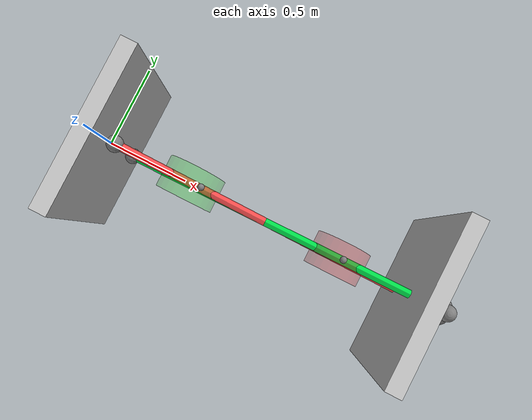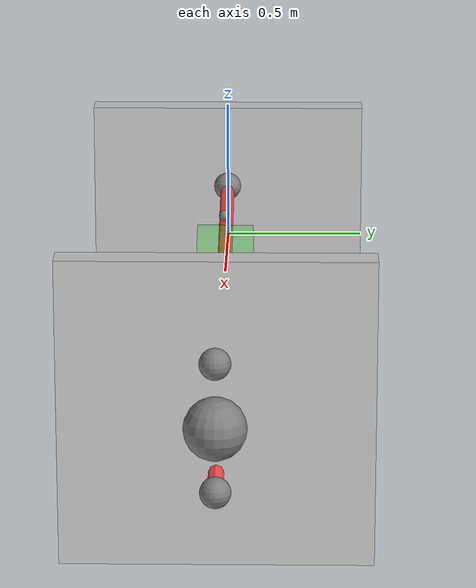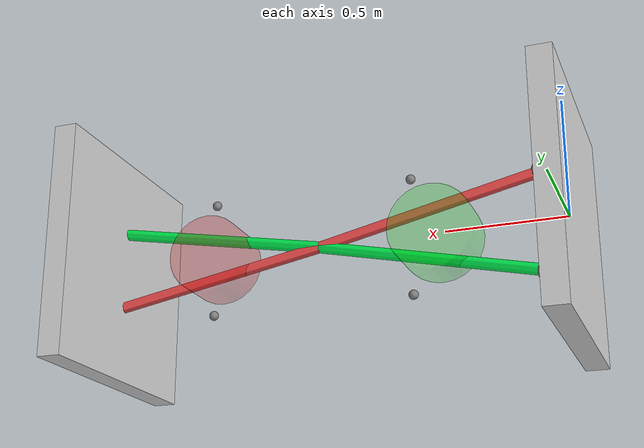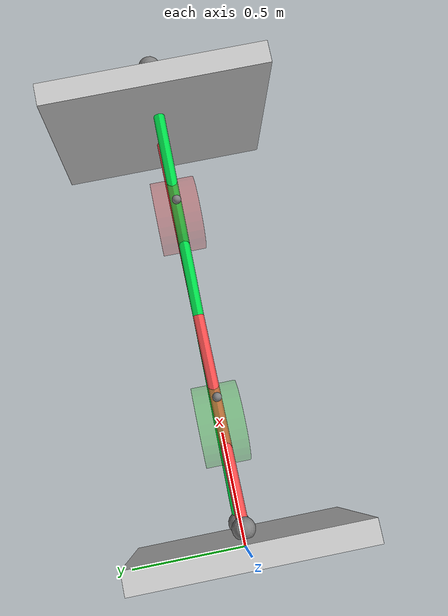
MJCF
<mujoco>
	<option gravity="0 0 -9.81" /> <worldbody>
        <light diffuse=".5 .5 .5" pos="0 0 3" dir="0 0 -1"/>
		<geom name="right_plane" type="box" size=".05 .5 .5" rgba="0.8 0.8 0.8 1"/>

		<site name="s1" size="0.05" pos="0.09 0 0.21"/>
		<site name="s2" size="0.05" pos="0.09 0 -0.21"/>

		<body pos="2 0 0">
			<geom name="left_plane" type="box" size=".05 .5 .5" rgba="0.8 0.8 0.8 1"/>
			<joint type="slide" axis="0 0 1"/>
			<site name="left_plane_site" size="0.05" pos="0 0 0"/>
		</body>

		<body pos="0.54 0 0">
			<joint type="hinge" axis="0 1 0"/>
			<geom name="pulley1" type="cylinder" size=".18 .1" rgba="0 0.9 0 0.25" euler="90 0 0 "/>
			<site name="pulley1_up_site" size="0.02" pos="0.1 0 0.25"/>
			<site name="pulley1_down_site" size="0.02" pos="0.1 0 -0.25"/>

			<site name="pulley1_pulley2_mid_site" size="0.02" pos="0.5 0 0"/>

			<body pos="0.98 0 0">
				<joint type="hinge" axis="0 1 0"/>
				<geom name="pulley2" type="cylinder" size=".17 .1" rgba="0.9 0 0 0.25" euler="90 0 0 "/>
				<site name="pulley2_up_site" size="0.02" pos="0 0 0.25"/>
				<site name="pulley2_down_site" size="0.02" pos="0 0 -0.25"/>

				<body pos="0.65 0 0">
					<site name="s3" size="0.05" pos="0 0 0.21"/>
					<site name="s4" size="0.05" pos="0 0 -0.21"/>
					<site name="end_effector_site" size="0.1" pos="0 0 0"/>
				</body>
			</body>
		</body>
	</worldbody>

	<equality>
        <weld site1="left_plane_site" site2="end_effector_site" torquescale="100"/>
	</equality>

	<tendon>
		<spatial name="tendon_1" width=".025" rgba=".95 .3 .3 1" stiffness="500000" damping="1000">
			<site site="s1"/>
			<geom geom="pulley1" sidesite="pulley1_up_site" />
			<site site="pulley1_pulley2_mid_site"/>
			<geom geom="pulley2" sidesite="pulley2_down_site"/>
			<site site="s4"/>
		</spatial>
  	</tendon>

	<tendon>
		<spatial name="tendon_2" width=".025" rgba=".0 .9 .3 1" stiffness="500000" damping="1000">
			<site site="s2"/>
			<geom geom="pulley1" sidesite="pulley1_down_site" />
			<site site="pulley1_pulley2_mid_site"/>
			<geom geom="pulley2" sidesite="pulley2_up_site"/>
			<site site="s3"/>
		</spatial>
  	</tendon>

    <actuator>
        <motor name="actuator1" tendon="tendon_1" gear="100"/>
		<motor name="actuator2" tendon="tendon_2" gear="100"/>
	</actuator>

	<sensor>
        <framepos name="ee_pos" objtype="site" objname="end_effector_site"/>

        <tendonpos name="t1_pos" tendon="tendon_1"/>
        <tendonvel name="t1_vel" tendon="tendon_1"/>

        <tendonpos name="t2_pos" tendon="tendon_2"/>
        <tendonvel name="t2_vel" tendon="tendon_2"/>
	</sensor>

</mujoco>
